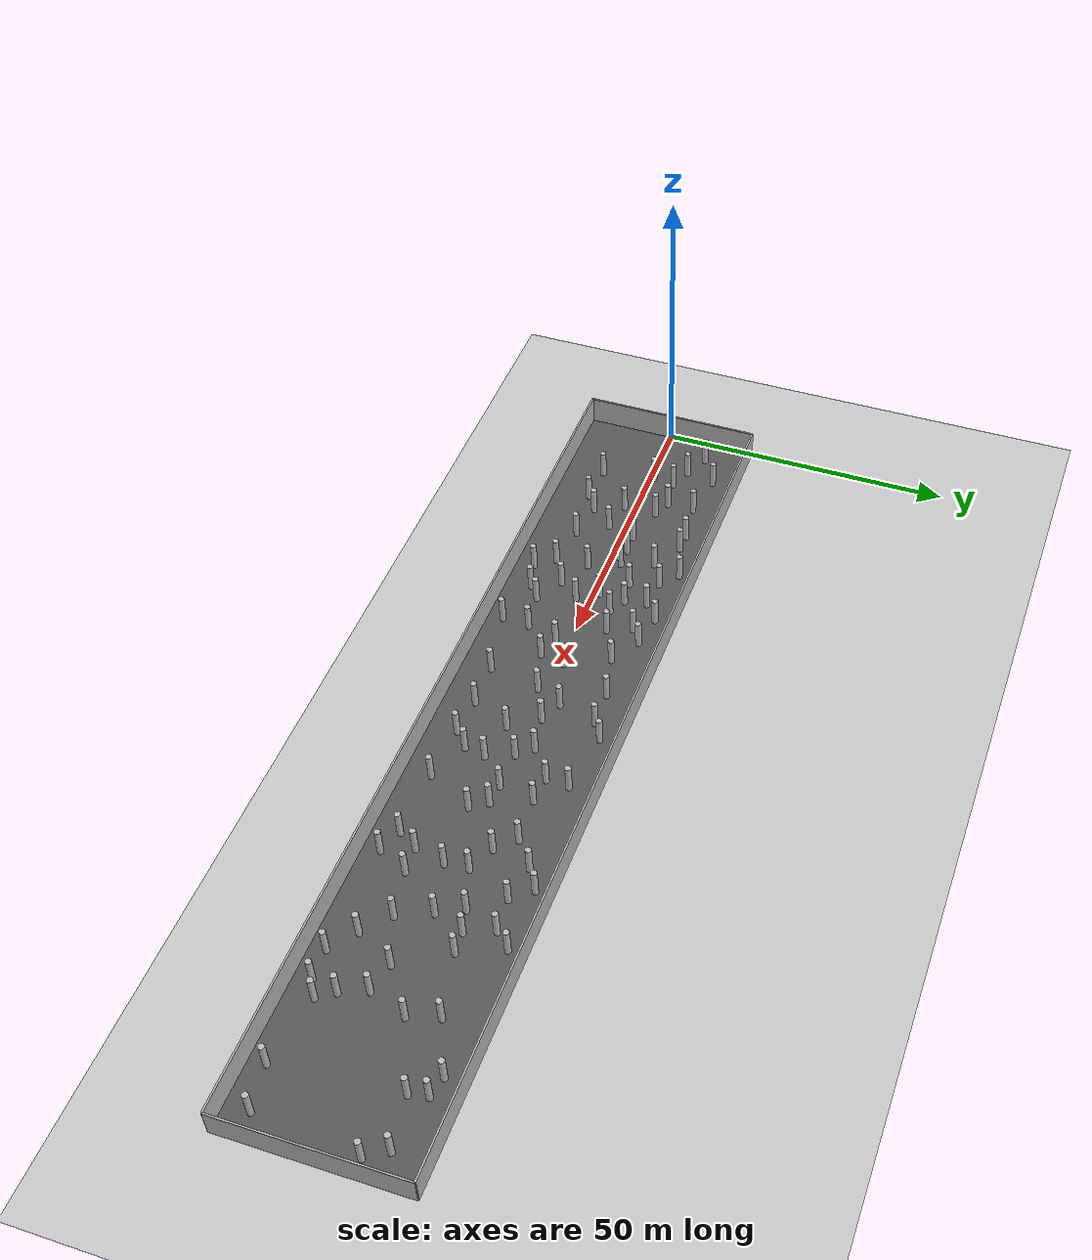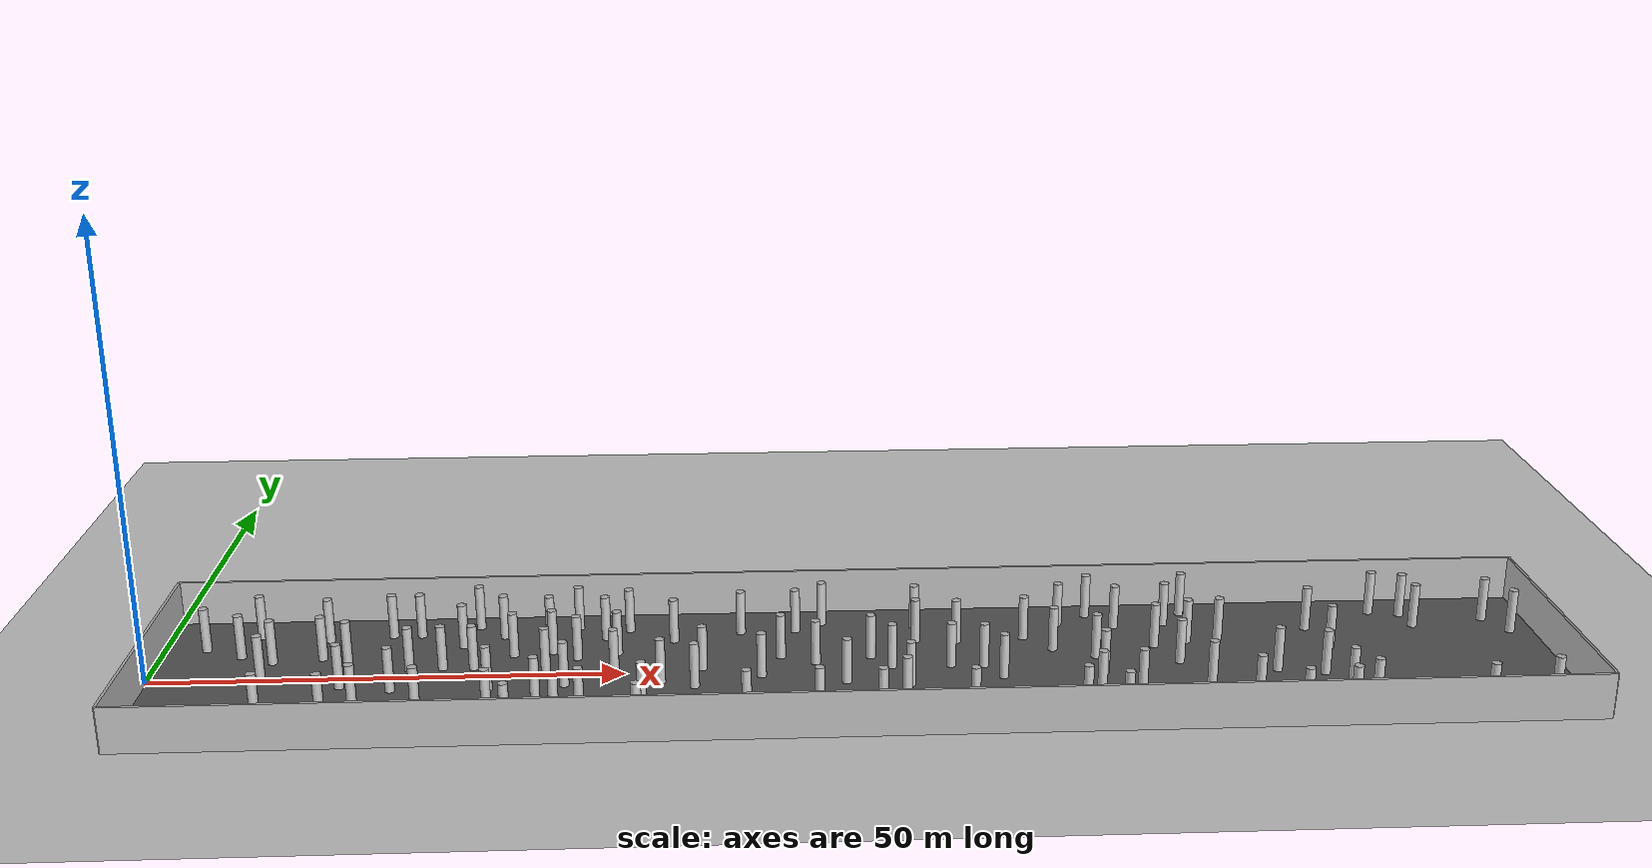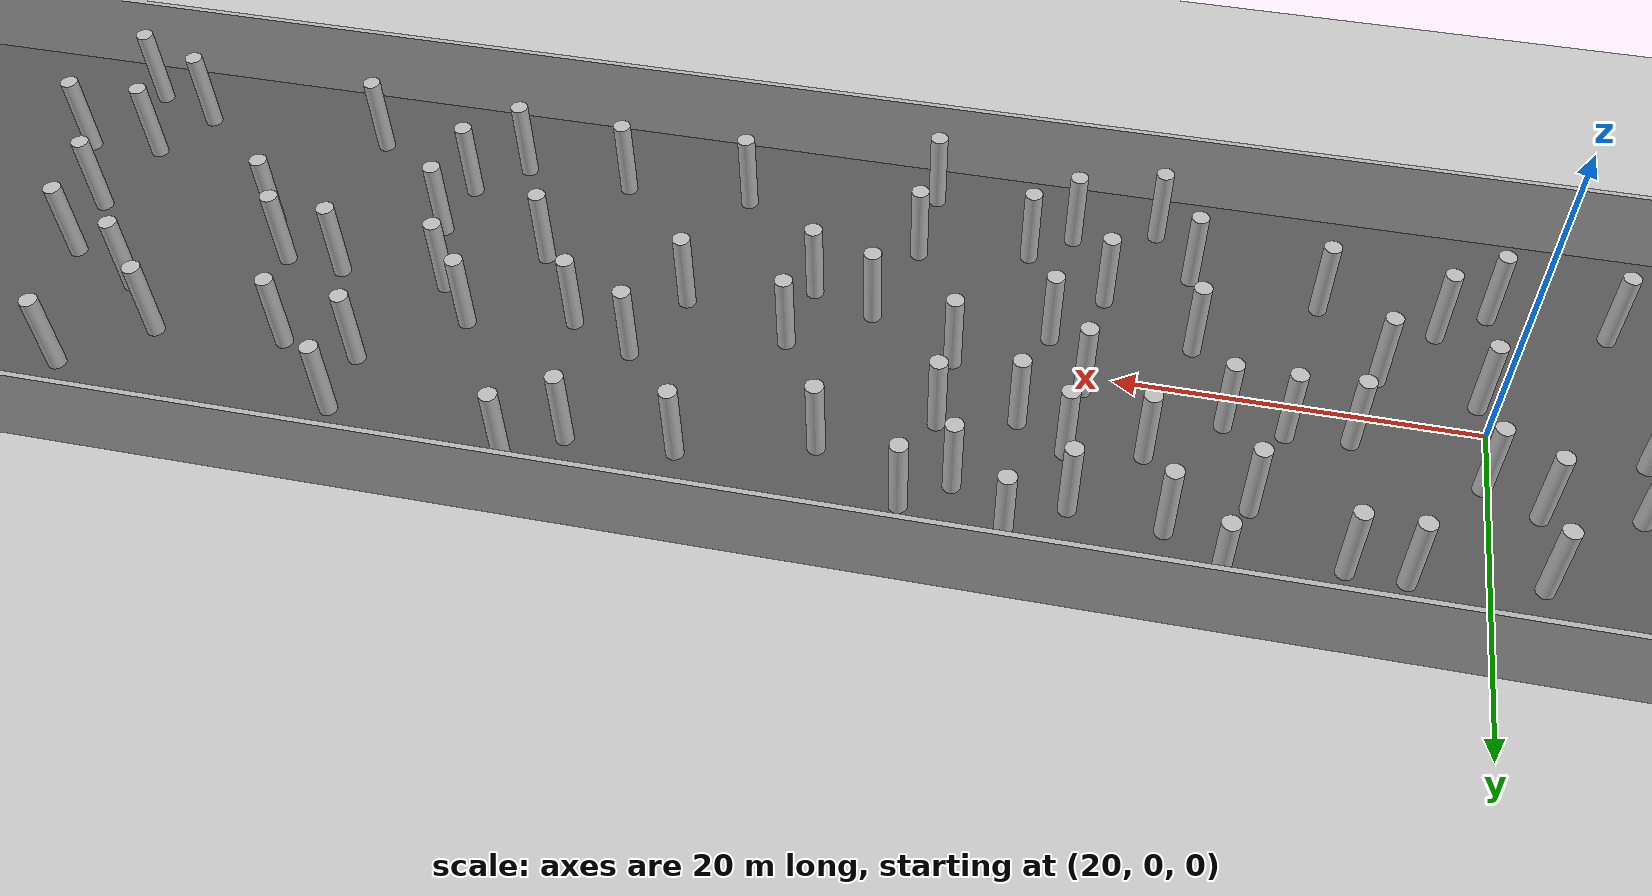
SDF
<?xml version="1.0" ?>
<sdf version="1.5">
  <world name="default">
    <include><uri>model://sun</uri></include>
    <include><uri>model://ground_plane</uri></include>

    <model name="corridor_floor">
      <static>true</static>
      <pose>75 0 0.01 0 0 0</pose>
      <link name="link">
        <collision name="collision">
          <geometry><box><size>150 30 0.02</size></box></geometry>
        </collision>
        <visual name="visual">
          <geometry><box><size>150 30 0.02</size></box></geometry>
          <material>
            <ambient>0.25 0.25 0.25 1</ambient>
            <diffuse>0.35 0.35 0.35 1</diffuse>
          </material>
        </visual>
      </link>
    </model>

    <physics name="default_physics" default="0" type="ode">
      <gravity>0 0 -9.8066</gravity>
      <ode>
        <solver>
          <type>quick</type>
          <iters>10</iters>
          <sor>1.3</sor>
          <use_dynamic_moi_rescaling>0</use_dynamic_moi_rescaling>
        </solver>
        <constraints>
          <cfm>0</cfm>
          <erp>0.2</erp>
          <contact_max_correcting_vel>100</contact_max_correcting_vel>
          <contact_surface_layer>0.001</contact_surface_layer>
        </constraints>
      </ode>
      <max_step_size>0.004</max_step_size>
      <real_time_factor>1</real_time_factor>
      <real_time_update_rate>250</real_time_update_rate>
      <magnetic_field>6.0e-6 2.3e-5 -4.2e-5</magnetic_field>
    </physics>

    <model name="left_wall">
      <static>true</static>
      <pose>75 15.15 2.5 0 0 0</pose>
      <link name="link">
        <collision name="collision">
          <geometry><box><size>150 0.3 5</size></box></geometry>
        </collision>
        <visual name="visual">
          <geometry><box><size>150 0.3 5</size></box></geometry>
        </visual>
      </link>
    </model>

    <model name="right_wall">
      <static>true</static>
      <pose>75 -15.15 2.5 0 0 0</pose>
      <link name="link">
        <collision name="collision">
          <geometry><box><size>150 0.3 5</size></box></geometry>
        </collision>
        <visual name="visual">
          <geometry><box><size>150 0.3 5</size></box></geometry>
        </visual>
      </link>
    </model>

    <model name="start_wall">
      <static>true</static>
      <pose>0 0 2.5 0 0 0</pose>
      <link name="link">
        <collision name="collision">
          <geometry><box><size>0.3 30.3 5</size></box></geometry>
        </collision>
        <visual name="visual">
          <geometry><box><size>0.3 30.3 5</size></box></geometry>
        </visual>
      </link>
    </model>

    <model name="end_wall">
      <static>true</static>
      <pose>150 0 2.5 0 0 0</pose>
      <link name="link">
        <collision name="collision">
          <geometry><box><size>0.3 30.3 5</size></box></geometry>
        </collision>
        <visual name="visual">
          <geometry><box><size>0.3 30.3 5</size></box></geometry>
        </visual>
      </link>
    </model>

    <include><name>cylinder_00</name><uri>model://cylinder_r05_h5</uri><pose>145.858 -10.959 2.5 0 0 0</pose></include>
    <include><name>cylinder_01</name><uri>model://cylinder_r05_h5</uri><pose>57.423 -3.407 2.5 0 0 0</pose></include>
    <include><name>cylinder_02</name><uri>model://cylinder_r05_h5</uri><pose>85.660 6.153 2.5 0 0 0</pose></include>
    <include><name>cylinder_03</name><uri>model://cylinder_r05_h5</uri><pose>9.752 10.893 2.5 0 0 0</pose></include>
    <include><name>cylinder_04</name><uri>model://cylinder_r05_h5</uri><pose>66.498 3.264 2.5 0 0 0</pose></include>
    <include><name>cylinder_05</name><uri>model://cylinder_r05_h5</uri><pose>20.324 3.743 2.5 0 0 0</pose></include>
    <include><name>cylinder_06</name><uri>model://cylinder_r05_h5</uri><pose>114.328 5.269 2.5 0 0 0</pose></include>
    <include><name>cylinder_07</name><uri>model://cylinder_r05_h5</uri><pose>68.183 9.808 2.5 0 0 0</pose></include>
    <include><name>cylinder_08</name><uri>model://cylinder_r05_h5</uri><pose>36.504 -8.589 2.5 0 0 0</pose></include>
    <include><name>cylinder_09</name><uri>model://cylinder_r05_h5</uri><pose>73.322 -3.105 2.5 0 0 0</pose></include>
    <include><name>cylinder_10</name><uri>model://cylinder_r05_h5</uri><pose>37.825 5.009 2.5 0 0 0</pose></include>
    <include><name>cylinder_11</name><uri>model://cylinder_r05_h5</uri><pose>53.847 -2.229 2.5 0 0 0</pose></include>
    <include><name>cylinder_12</name><uri>model://cylinder_r05_h5</uri><pose>78.271 0.292 2.5 0 0 0</pose></include>
    <include><name>cylinder_13</name><uri>model://cylinder_r05_h5</uri><pose>97.469 -10.627 2.5 0 0 0</pose></include>
    <include><name>cylinder_14</name><uri>model://cylinder_r05_h5</uri><pose>19.838 -8.789 2.5 0 0 0</pose></include>
    <include><name>cylinder_15</name><uri>model://cylinder_r05_h5</uri><pose>127.349 -10.492 2.5 0 0 0</pose></include>
    <include><name>cylinder_16</name><uri>model://cylinder_r05_h5</uri><pose>93.098 6.717 2.5 0 0 0</pose></include>
    <include><name>cylinder_17</name><uri>model://cylinder_r05_h5</uri><pose>100.648 -2.207 2.5 0 0 0</pose></include>
    <include><name>cylinder_18</name><uri>model://cylinder_r05_h5</uri><pose>81.362 10.320 2.5 0 0 0</pose></include>
    <include><name>cylinder_19</name><uri>model://cylinder_r05_h5</uri><pose>119.096 -2.507 2.5 0 0 0</pose></include>
    <include><name>cylinder_20</name><uri>model://cylinder_r05_h5</uri><pose>124.680 -12.038 2.5 0 0 0</pose></include>
    <include><name>cylinder_21</name><uri>model://cylinder_r05_h5</uri><pose>51.885 -12.296 2.5 0 0 0</pose></include>
    <include><name>cylinder_22</name><uri>model://cylinder_r05_h5</uri><pose>32.132 7.493 2.5 0 0 0</pose></include>
    <include><name>cylinder_23</name><uri>model://cylinder_r05_h5</uri><pose>13.291 -8.415 2.5 0 0 0</pose></include>
    <include><name>cylinder_24</name><uri>model://cylinder_r05_h5</uri><pose>33.868 2.056 2.5 0 0 0</pose></include>
    <include><name>cylinder_25</name><uri>model://cylinder_r05_h5</uri><pose>101.398 -12.133 2.5 0 0 0</pose></include>
    <include><name>cylinder_26</name><uri>model://cylinder_r05_h5</uri><pose>27.127 1.908 2.5 0 0 0</pose></include>
    <include><name>cylinder_27</name><uri>model://cylinder_r05_h5</uri><pose>79.308 -7.719 2.5 0 0 0</pose></include>
    <include><name>cylinder_28</name><uri>model://cylinder_r05_h5</uri><pose>38.741 -11.790 2.5 0 0 0</pose></include>
    <include><name>cylinder_29</name><uri>model://cylinder_r05_h5</uri><pose>64.405 -1.264 2.5 0 0 0</pose></include>
    <include><name>cylinder_30</name><uri>model://cylinder_r05_h5</uri><pose>70.257 -9.694 2.5 0 0 0</pose></include>
    <include><name>cylinder_31</name><uri>model://cylinder_r05_h5</uri><pose>47.448 8.927 2.5 0 0 0</pose></include>
    <include><name>cylinder_32</name><uri>model://cylinder_r05_h5</uri><pose>41.350 9.279 2.5 0 0 0</pose></include>
    <include><name>cylinder_33</name><uri>model://cylinder_r05_h5</uri><pose>119.673 -12.296 2.5 0 0 0</pose></include>
    <include><name>cylinder_34</name><uri>model://cylinder_r05_h5</uri><pose>81.228 6.521 2.5 0 0 0</pose></include>
    <include><name>cylinder_35</name><uri>model://cylinder_r05_h5</uri><pose>4.473 7.829 2.5 0 0 0</pose></include>
    <include><name>cylinder_36</name><uri>model://cylinder_r05_h5</uri><pose>100.815 12.294 2.5 0 0 0</pose></include>
    <include><name>cylinder_37</name><uri>model://cylinder_r05_h5</uri><pose>84.584 0.260 2.5 0 0 0</pose></include>
    <include><name>cylinder_38</name><uri>model://cylinder_r05_h5</uri><pose>138.752 -12.155 2.5 0 0 0</pose></include>
    <include><name>cylinder_39</name><uri>model://cylinder_r05_h5</uri><pose>25.832 -2.895 2.5 0 0 0</pose></include>
    <include><name>cylinder_40</name><uri>model://cylinder_r05_h5</uri><pose>44.345 11.715 2.5 0 0 0</pose></include>
    <include><name>cylinder_41</name><uri>model://cylinder_r05_h5</uri><pose>52.162 -7.624 2.5 0 0 0</pose></include>
    <include><name>cylinder_42</name><uri>model://cylinder_r05_h5</uri><pose>54.909 7.812 2.5 0 0 0</pose></include>
    <include><name>cylinder_43</name><uri>model://cylinder_r05_h5</uri><pose>107.097 4.041 2.5 0 0 0</pose></include>
    <include><name>cylinder_44</name><uri>model://cylinder_r05_h5</uri><pose>110.856 5.024 2.5 0 0 0</pose></include>
    <include><name>cylinder_45</name><uri>model://cylinder_r05_h5</uri><pose>145.141 9.182 2.5 0 0 0</pose></include>
    <include><name>cylinder_46</name><uri>model://cylinder_r05_h5</uri><pose>12.245 4.377 2.5 0 0 0</pose></include>
    <include><name>cylinder_47</name><uri>model://cylinder_r05_h5</uri><pose>103.793 -7.052 2.5 0 0 0</pose></include>
    <include><name>cylinder_48</name><uri>model://cylinder_r05_h5</uri><pose>20.449 -1.900 2.5 0 0 0</pose></include>
    <include><name>cylinder_49</name><uri>model://cylinder_r05_h5</uri><pose>86.023 -10.528 2.5 0 0 0</pose></include>
    <include><name>cylinder_50</name><uri>model://cylinder_r05_h5</uri><pose>11.791 0.601 2.5 0 0 0</pose></include>
    <include><name>cylinder_51</name><uri>model://cylinder_r05_h5</uri><pose>88.064 -0.042 2.5 0 0 0</pose></include>
    <include><name>cylinder_52</name><uri>model://cylinder_r05_h5</uri><pose>132.965 11.563 2.5 0 0 0</pose></include>
    <include><name>cylinder_53</name><uri>model://cylinder_r05_h5</uri><pose>103.519 9.126 2.5 0 0 0</pose></include>
    <include><name>cylinder_54</name><uri>model://cylinder_r05_h5</uri><pose>125.596 -7.778 2.5 0 0 0</pose></include>
    <include><name>cylinder_55</name><uri>model://cylinder_r05_h5</uri><pose>62.190 9.613 2.5 0 0 0</pose></include>
    <include><name>cylinder_56</name><uri>model://cylinder_r05_h5</uri><pose>109.146 9.645 2.5 0 0 0</pose></include>
    <include><name>cylinder_57</name><uri>model://cylinder_r05_h5</uri><pose>76.142 2.743 2.5 0 0 0</pose></include>
    <include><name>cylinder_58</name><uri>model://cylinder_r05_h5</uri><pose>71.126 11.615 2.5 0 0 0</pose></include>
    <include><name>cylinder_59</name><uri>model://cylinder_r05_h5</uri><pose>24.109 10.539 2.5 0 0 0</pose></include>
    <include><name>cylinder_60</name><uri>model://cylinder_r05_h5</uri><pose>45.857 -8.656 2.5 0 0 0</pose></include>
    <include><name>cylinder_61</name><uri>model://cylinder_r05_h5</uri><pose>36.332 9.743 2.5 0 0 0</pose></include>
    <include><name>cylinder_62</name><uri>model://cylinder_r05_h5</uri><pose>41.558 1.029 2.5 0 0 0</pose></include>
    <include><name>cylinder_63</name><uri>model://cylinder_r05_h5</uri><pose>136.240 10.810 2.5 0 0 0</pose></include>
    <include><name>cylinder_64</name><uri>model://cylinder_r05_h5</uri><pose>30.579 2.122 2.5 0 0 0</pose></include>
    <include><name>cylinder_65</name><uri>model://cylinder_r05_h5</uri><pose>79.942 -4.146 2.5 0 0 0</pose></include>
    <include><name>cylinder_66</name><uri>model://cylinder_r05_h5</uri><pose>43.796 -2.428 2.5 0 0 0</pose></include>
    <include><name>cylinder_67</name><uri>model://cylinder_r05_h5</uri><pose>147.206 5.854 2.5 0 0 0</pose></include>
    <include><name>cylinder_68</name><uri>model://cylinder_r05_h5</uri><pose>29.202 -7.671 2.5 0 0 0</pose></include>
    <include><name>cylinder_69</name><uri>model://cylinder_r05_h5</uri><pose>48.846 0.361 2.5 0 0 0</pose></include>
    <include><name>cylinder_70</name><uri>model://cylinder_r05_h5</uri><pose>89.883 -2.754 2.5 0 0 0</pose></include>
    <include><name>cylinder_71</name><uri>model://cylinder_r05_h5</uri><pose>100.335 1.718 2.5 0 0 0</pose></include>
    <include><name>cylinder_72</name><uri>model://cylinder_r05_h5</uri><pose>8.617 5.866 2.5 0 0 0</pose></include>
    <include><name>cylinder_73</name><uri>model://cylinder_r05_h5</uri><pose>17.439 5.087 2.5 0 0 0</pose></include>
    <include><name>cylinder_74</name><uri>model://cylinder_r05_h5</uri><pose>115.564 -9.113 2.5 0 0 0</pose></include>
    <include><name>cylinder_75</name><uri>model://cylinder_r05_h5</uri><pose>111.507 12.262 2.5 0 0 0</pose></include>
    <include><name>cylinder_76</name><uri>model://cylinder_r05_h5</uri><pose>35.932 -3.134 2.5 0 0 0</pose></include>
    <include><name>cylinder_77</name><uri>model://cylinder_r05_h5</uri><pose>27.175 10.485 2.5 0 0 0</pose></include>
    <include><name>cylinder_78</name><uri>model://cylinder_r05_h5</uri><pose>70.191 1.587 2.5 0 0 0</pose></include>
    <include><name>cylinder_79</name><uri>model://cylinder_r05_h5</uri><pose>123.971 -3.485 2.5 0 0 0</pose></include>
    <include><name>cylinder_80</name><uri>model://cylinder_r05_h5</uri><pose>111.423 -5.474 2.5 0 0 0</pose></include>
    <include><name>cylinder_81</name><uri>model://cylinder_r05_h5</uri><pose>44.718 3.955 2.5 0 0 0</pose></include>
    <include><name>cylinder_82</name><uri>model://cylinder_r05_h5</uri><pose>126.129 2.762 2.5 0 0 0</pose></include>
    <include><name>cylinder_83</name><uri>model://cylinder_r05_h5</uri><pose>58.163 0.736 2.5 0 0 0</pose></include>
    <include><name>cylinder_84</name><uri>model://cylinder_r05_h5</uri><pose>43.503 -10.521 2.5 0 0 0</pose></include>
    <include><name>cylinder_85</name><uri>model://cylinder_r05_h5</uri><pose>62.857 -9.940 2.5 0 0 0</pose></include>
    <include><name>cylinder_86</name><uri>model://cylinder_r05_h5</uri><pose>33.382 12.396 2.5 0 0 0</pose></include>
    <include><name>cylinder_87</name><uri>model://cylinder_r05_h5</uri><pose>109.140 -0.036 2.5 0 0 0</pose></include>
    <include><name>cylinder_88</name><uri>model://cylinder_r05_h5</uri><pose>76.663 -10.125 2.5 0 0 0</pose></include>
    <include><name>cylinder_89</name><uri>model://cylinder_r05_h5</uri><pose>99.519 -7.285 2.5 0 0 0</pose></include>
    <include><name>cylinder_90</name><uri>model://cylinder_r05_h5</uri><pose>41.142 -5.933 2.5 0 0 0</pose></include>
    <include><name>cylinder_91</name><uri>model://cylinder_r05_h5</uri><pose>95.969 3.697 2.5 0 0 0</pose></include>
    <include><name>cylinder_92</name><uri>model://cylinder_r05_h5</uri><pose>41.969 5.580 2.5 0 0 0</pose></include>
    <include><name>cylinder_93</name><uri>model://cylinder_r05_h5</uri><pose>124.680 7.676 2.5 0 0 0</pose></include>
    <include><name>cylinder_94</name><uri>model://cylinder_r05_h5</uri><pose>49.952 10.767 2.5 0 0 0</pose></include>
    <include><name>cylinder_95</name><uri>model://cylinder_r05_h5</uri><pose>97.349 10.089 2.5 0 0 0</pose></include>
    <include><name>cylinder_96</name><uri>model://cylinder_r05_h5</uri><pose>17.341 9.679 2.5 0 0 0</pose></include>
    <include><name>cylinder_97</name><uri>model://cylinder_r05_h5</uri><pose>136.876 7.858 2.5 0 0 0</pose></include>
    <include><name>cylinder_98</name><uri>model://cylinder_r05_h5</uri><pose>22.697 -6.796 2.5 0 0 0</pose></include>
    <include><name>cylinder_99</name><uri>model://cylinder_r05_h5</uri><pose>48.951 4.909 2.5 0 0 0</pose></include>

  </world>
</sdf>

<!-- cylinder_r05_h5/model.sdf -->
<sdf version="1.5">
  <model name="cylinder_r05_h5">
    <static>true</static>
    <link name="link">
      <collision name="collision">
        <geometry>
          <cylinder>
            <radius>0.5</radius>
            <length>5</length>
          </cylinder>
        </geometry>
      </collision>
      <visual name="visual">
        <geometry>
          <cylinder>
            <radius>0.5</radius>
            <length>5</length>
          </cylinder>
        </geometry>
        <material>
          <ambient>0.5 0.5 0.5 1</ambient>
          <diffuse>0.75 0.75 0.75 1</diffuse>
        </material>
      </visual>
    </link>
  </model>
</sdf>
